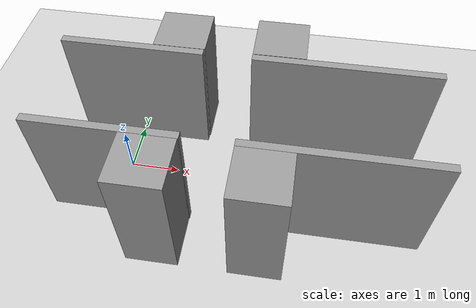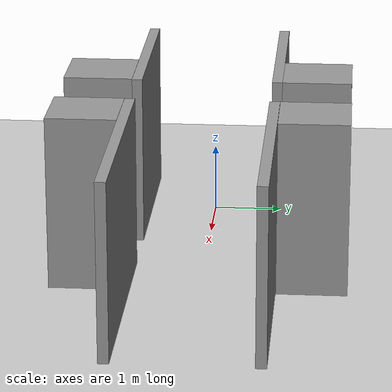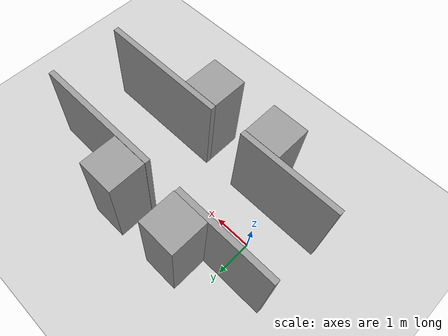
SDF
<sdf version="1.6">
 <world name="default">
  <light name="sun" type="directional">
   <pose>0 0 10 0 -0 0</pose>
   <diffuse>0.8 0.8 0.8 1</diffuse>
   <specular>0.2 0.2 0.2 1</specular>
   <attenuation>
    <range>1000</range>
    <constant>0.9</constant>
    <linear>0.01</linear>
    <quadratic>0.001</quadratic>
   </attenuation>
   <direction>-0.5 0.1 -0.9</direction>
  </light>
  <model name="ground_plane">
   <static>1</static>
   <link name="link">
    <collision name="collision">
     <geometry><plane><normal>0 0 1</normal><size>100 100</size></plane></geometry>
     <surface><friction><ode><mu>100</mu><mu2>50</mu2></ode></friction></surface>
    </collision>
    <visual name="visual">
     <cast_shadows>0</cast_shadows>
     <geometry><plane><normal>0 0 1</normal><size>100 100</size></plane></geometry>
     <material>
      <script><uri>file://media/materials/scripts/gazebo.material</uri><name>Gazebo/Grey</name></script>
     </material>
    </visual>
   </link>
  </model>
  <gravity>0 0 -9.8</gravity>
  <magnetic_field>6e-06 2.3e-05 -4.2e-05</magnetic_field>
  <atmosphere type="adiabatic"/>
  <physics name="default_physics" default="0" type="ode">
   <max_step_size>0.001</max_step_size>
   <real_time_factor>1</real_time_factor>
   <real_time_update_rate>1000</real_time_update_rate>
  </physics>
  <scene><ambient>0.4 0.4 0.4 1</ambient><background>0.7 0.7 0.7 1</background><shadows>1</shadows></scene>
  <audio><device>default</device></audio>
  <spherical_coordinates>
   <surface_model>EARTH_WGS84</surface_model>
   <latitude_deg>0</latitude_deg>
   <longitude_deg>0</longitude_deg>
   <elevation>0</elevation>
   <heading_deg>0</heading_deg>
  </spherical_coordinates>
  <model name="Untitled">
   <pose>2.3042 -0.031405 0 0 -0 0</pose>
   <link name="Wall_0">
    <collision name="Wall_0_Collision">
     <geometry><box><size>2.75 0.15 2.5</size></box></geometry>
     <pose>0 0 1.25 0 -0 0</pose>
    </collision>
    <visual name="Wall_0_Visual">
     <pose>0 0 1.25 0 -0 0</pose>
     <geometry><box><size>2.75 0.15 2.5</size></box></geometry>
     <material>
      <script><uri>file://media/materials/scripts/gazebo.material</uri><name>Gazebo/Grey</name></script>
      <ambient>1 1 1 1</ambient>
     </material>
     <meta><layer>0</layer></meta>
    </visual>
    <pose>-2.20493 -1.01856 0 0 -0 0</pose>
   </link>
   <link name="Wall_2">
    <collision name="Wall_2_Collision">
     <geometry><box><size>3.5 0.15 2.5</size></box></geometry>
     <pose>0 0 1.25 0 -0 0</pose>
    </collision>
    <visual name="Wall_2_Visual">
     <pose>0 0 1.25 0 -0 0</pose>
     <geometry><box><size>3.5 0.15 2.5</size></box></geometry>
     <material>
      <script><uri>file://media/materials/scripts/gazebo.material</uri><name>Gazebo/Grey</name></script>
      <ambient>1 1 1 1</ambient>
     </material>
     <meta><layer>0</layer></meta>
    </visual>
    <pose>1.83349 -1.02368 0 0 -0 0</pose>
   </link>
   <link name="Wall_4">
    <collision name="Wall_4_Collision">
     <geometry><box><size>2.75 0.15 2.5</size></box></geometry>
     <pose>0 0 1.25 0 -0 0</pose>
    </collision>
    <visual name="Wall_4_Visual">
     <pose>0 0 1.25 0 -0 0</pose>
     <geometry><box><size>2.75 0.15 2.5</size></box></geometry>
     <material>
      <script><uri>file://media/materials/scripts/gazebo.material</uri><name>Gazebo/Grey</name></script>
      <ambient>1 1 1 1</ambient>
     </material>
     <meta><layer>0</layer></meta>
    </visual>
    <pose>-2.20864 1.01913 0 0 -0 0</pose>
   </link>
   <link name="Wall_6">
    <collision name="Wall_6_Collision">
     <geometry><box><size>3.5 0.15 2.5</size></box></geometry>
     <pose>0 0 1.25 0 -0 0</pose>
    </collision>
    <visual name="Wall_6_Visual">
     <pose>0 0 1.25 0 -0 0</pose>
     <geometry><box><size>3.5 0.15 2.5</size></box></geometry>
     <material>
      <script><uri>file://media/materials/scripts/gazebo.material</uri><name>Gazebo/Grey</name></script>
      <ambient>1 1 1 1</ambient>
     </material>
     <meta><layer>0</layer></meta>
    </visual>
    <pose>1.83364 1.02368 0 0 -0 0</pose>
   </link>
   <static>1</static>
  </model>
  <model name="unit_box">
   <pose>0.962331 -1.62496 1.25199 0 -0 0</pose>
   <link name="link">
    <inertial>
     <mass>1</mass>
     <inertia>
      <ixx>0.166667</ixx>
      <ixy>0</ixy>
      <ixz>0</ixz>
      <iyy>0.166667</iyy>
      <iyz>0</iyz>
      <izz>0.166667</izz>
     </inertia>
    </inertial>
    <collision name="collision"><geometry><box><size>1 1 2.50398</size></box></geometry></collision>
    <visual name="visual">
     <geometry><box><size>1 1 2.50398</size></box></geometry>
     <material>
      <script><name>Gazebo/Grey</name><uri>file://media/materials/scripts/gazebo.material</uri></script>
     </material>
    </visual>
   </link>
  </model>
  <model name="unit_box_clone">
   <pose>2.8894 -1.63063 1.25199 0 0 -0.001089</pose>
   <link name="link">
    <inertial>
     <mass>1</mass>
     <inertia>
      <ixx>0.166667</ixx>
      <ixy>0</ixy>
      <ixz>0</ixz>
      <iyy>0.166667</iyy>
      <iyz>0</iyz>
      <izz>0.166667</izz>
     </inertia>
    </inertial>
    <collision name="collision"><geometry><box><size>1 1 2.50398</size></box></geometry></collision>
    <visual name="visual">
     <geometry><box><size>1 1 2.50398</size></box></geometry>
     <material>
      <script><name>Gazebo/Grey</name><uri>file://media/materials/scripts/gazebo.material</uri></script>
     </material>
    </visual>
   </link>
  </model>
  <model name="unit_box_clone_0">
   <pose>2.89117 1.57135 1.25199 -2e-06 -2e-06 0.001122</pose>
   <link name="link">
    <inertial>
     <mass>1</mass>
     <inertia>
      <ixx>0.166667</ixx>
      <ixy>0</ixy>
      <ixz>0</ixz>
      <iyy>0.166667</iyy>
      <iyz>0</iyz>
      <izz>0.166667</izz>
     </inertia>
    </inertial>
    <collision name="collision"><geometry><box><size>1 1 2.50398</size></box></geometry></collision>
    <visual name="visual">
     <geometry><box><size>1 1 2.50398</size></box></geometry>
     <material>
      <script><name>Gazebo/Grey</name><uri>file://media/materials/scripts/gazebo.material</uri></script>
     </material>
    </visual>
   </link>
  </model>
  <model name="unit_box_clone_1">
   <pose>0.988326 1.56276 1.25199 -0 -0 -7.1e-05</pose>
   <link name="link">
    <inertial>
     <mass>1</mass>
     <inertia>
      <ixx>0.166667</ixx>
      <ixy>0</ixy>
      <ixz>0</ixz>
      <iyy>0.166667</iyy>
      <iyz>0</iyz>
      <izz>0.166667</izz>
     </inertia>
    </inertial>
    <collision name="collision"><geometry><box><size>1 1 2.50398</size></box></geometry></collision>
    <visual name="visual">
     <geometry><box><size>1 1 2.50398</size></box></geometry>
     <material>
      <script><name>Gazebo/Grey</name><uri>file://media/materials/scripts/gazebo.material</uri></script>
     </material>
    </visual>
   </link>
  </model>
 </world>
</sdf>
